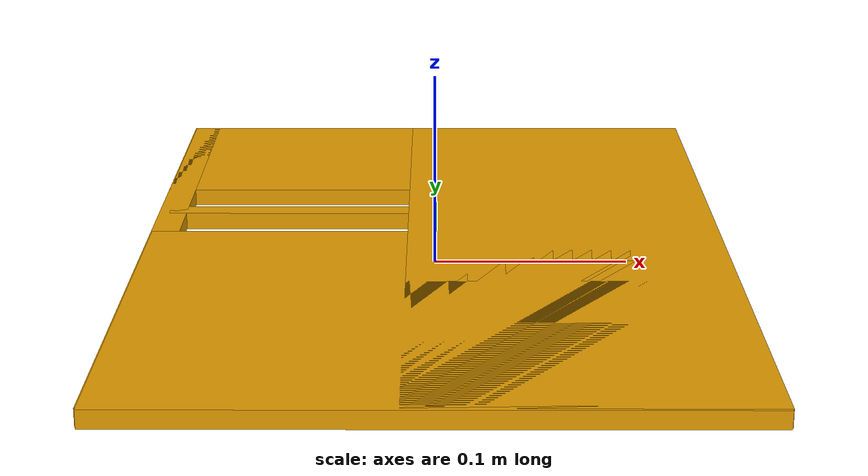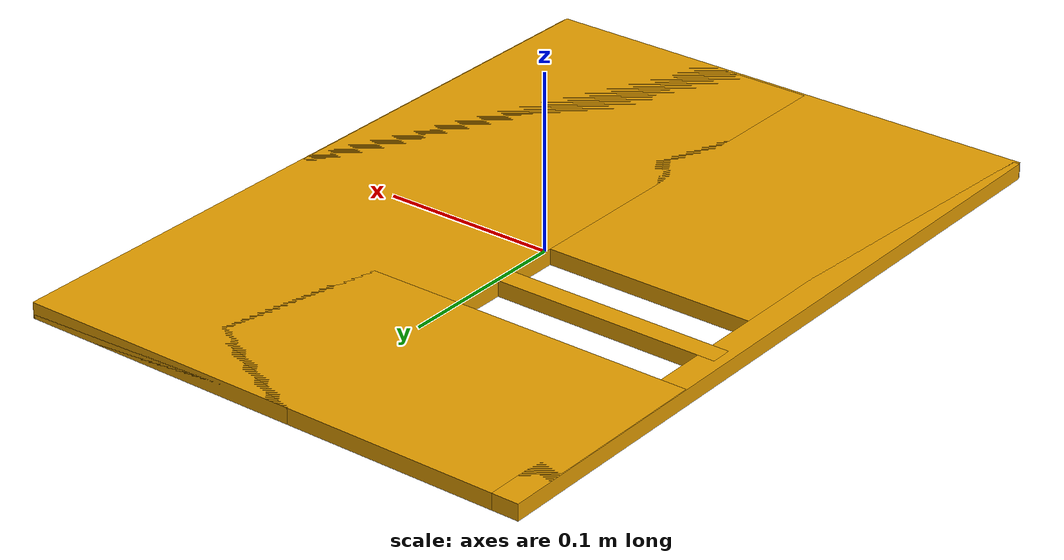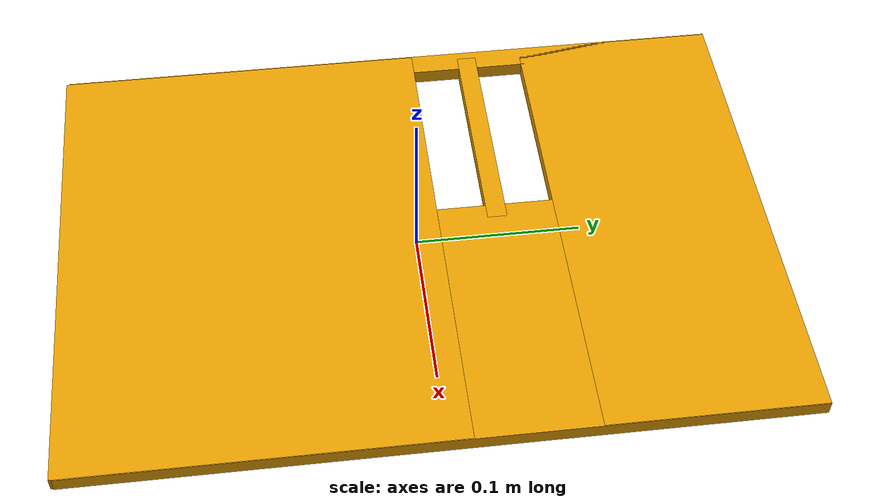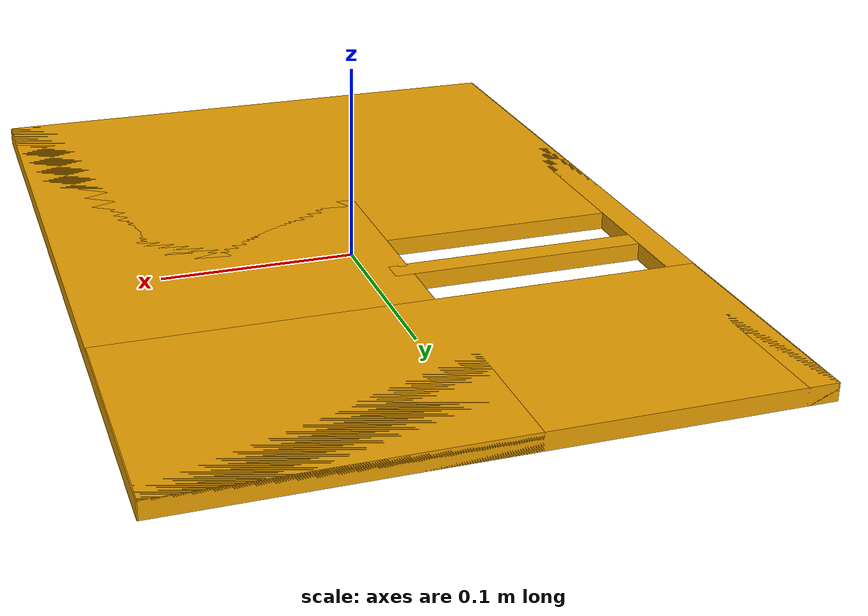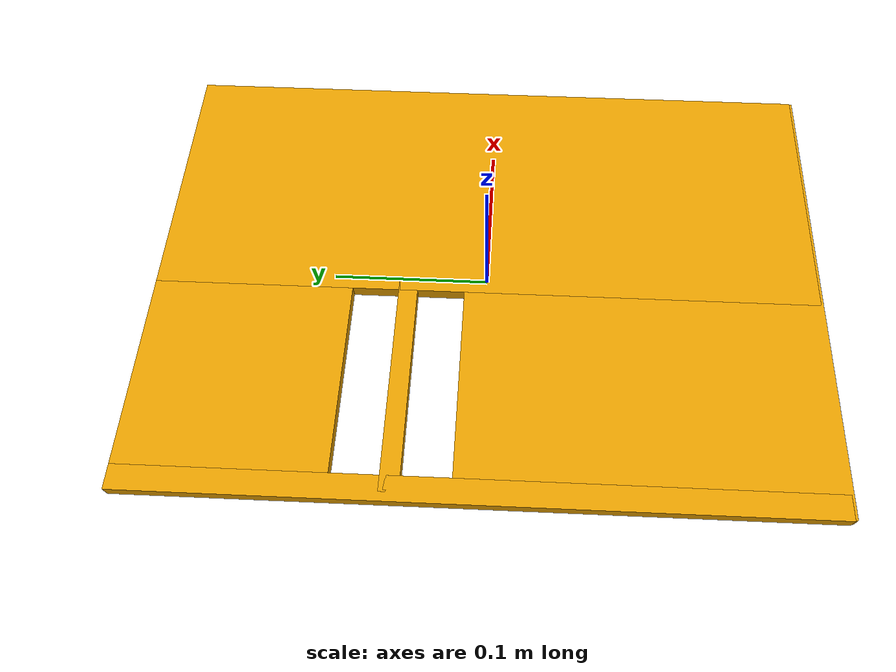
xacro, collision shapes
<?xml version="1.0"?>
<robot xmlns:xacro="http://wiki.ros.org/xacro" name="task_board">
  <!-- Include component macros -->
  <xacro:include filename="$(find aic_assets)/models/Task Board Base/task_board_base_macro.xacro"/>
  <xacro:include filename="$(find aic_assets)/models/LC Mount/lc_mount_macro.xacro"/>
  <xacro:include filename="$(find aic_assets)/models/sfp_mount_phase_2/sfp_mount_macro.xacro"/>
  <xacro:include filename="$(find aic_assets)/models/sc_mount_phase_2/sc_mount_macro.xacro"/>
  <xacro:include filename="$(find aic_assets)/models/SC Port/sc_port_macro.xacro"/>
  <xacro:include filename="$(find aic_assets)/models/NIC Card Mount/nic_card_mount_macro.xacro"/>

  <!-- Task Board Base pose arguments -->
  <xacro:arg name="x" default="-0.2"/>
  <xacro:arg name="y" default="0.2"/>
  <xacro:arg name="z" default="1.14"/>
  <xacro:arg name="roll" default="0.0"/>
  <xacro:arg name="pitch" default="0.0"/>
  <xacro:arg name="yaw" default="-3.141"/>

  <!-- LC Mount Rail 0: X=0.0275, Y=-0.10625 (left side, mount rail). LC mounts can be translated [-0.09625, 0.09625] along Y axis (rail direction) -->
  <xacro:arg name="lc_mount_rail_0_present" default="false"/>
  <xacro:arg name="lc_mount_rail_0_translation" default="0.0"/>
  <xacro:arg name="lc_mount_rail_0_roll" default="0.0"/>
  <xacro:arg name="lc_mount_rail_0_pitch" default="0.0"/>
  <xacro:arg name="lc_mount_rail_0_yaw" default="0.0"/>

  <!-- SFP Mount Rail 0: X=0.0535, Y=-0.10625 (left side, mount rail). SFP mounts can be translated [-0.09625, 0.09625] along Y axis (rail direction) -->
  <xacro:arg name="sfp_mount_rail_0_present" default="false"/>
  <xacro:arg name="sfp_mount_rail_0_translation" default="0.0"/>
  <xacro:arg name="sfp_mount_rail_0_roll" default="0.0"/>
  <xacro:arg name="sfp_mount_rail_0_pitch" default="0.0"/>
  <xacro:arg name="sfp_mount_rail_0_yaw" default="0.0"/>

  <!-- SC Mount Rail 0: X=0.0985, Y=-0.10625 (left side, mount rail). SC mounts can be translated [-0.09625, 0.09625] along Y axis (rail direction) -->
  <xacro:arg name="sc_mount_rail_0_present" default="false"/>
  <xacro:arg name="sc_mount_rail_0_translation" default="0.0"/>
  <xacro:arg name="sc_mount_rail_0_roll" default="0.0"/>
  <xacro:arg name="sc_mount_rail_0_pitch" default="0.0"/>
  <xacro:arg name="sc_mount_rail_0_yaw" default="0.0"/>

  <!-- LC Mount Rail 1: X=0.0275, Y=0.10625 (right side, mount rail). LC mounts can be translated [-0.09625, 0.09625] along Y axis (rail direction) -->
  <xacro:arg name="lc_mount_rail_1_present" default="false"/>
  <xacro:arg name="lc_mount_rail_1_translation" default="0.0"/>
  <xacro:arg name="lc_mount_rail_1_roll" default="0.0"/>
  <xacro:arg name="lc_mount_rail_1_pitch" default="0.0"/>
  <xacro:arg name="lc_mount_rail_1_yaw" default="0.0"/>

  <!-- SFP Mount Rail 1: X=0.0535, Y=0.10625 (right side, mount rail). SFP mounts can be translated [-0.09625, 0.09625] along Y axis (rail direction) -->
  <xacro:arg name="sfp_mount_rail_1_present" default="false"/>
  <xacro:arg name="sfp_mount_rail_1_translation" default="0.0"/>
  <xacro:arg name="sfp_mount_rail_1_roll" default="0.0"/>
  <xacro:arg name="sfp_mount_rail_1_pitch" default="0.0"/>
  <xacro:arg name="sfp_mount_rail_1_yaw" default="0.0"/>

  <!-- SC Mount Rail 1: X=0.0985, Y=0.10625 (right side, mount rail). SC mounts can be translated [-0.09625, 0.09625] along Y axis (rail direction) -->
  <xacro:arg name="sc_mount_rail_1_present" default="false"/>
  <xacro:arg name="sc_mount_rail_1_translation" default="0.0"/>
  <xacro:arg name="sc_mount_rail_1_roll" default="0.0"/>
  <xacro:arg name="sc_mount_rail_1_pitch" default="0.0"/>
  <xacro:arg name="sc_mount_rail_1_yaw" default="0.0"/>

  <!-- SC Port 0 -->
  <xacro:arg name="sc_port_0_present" default="false"/>
  <xacro:arg name="sc_port_0_translation" default="0.0"/>
  <xacro:arg name="sc_port_0_roll" default="0.0"/>
  <xacro:arg name="sc_port_0_pitch" default="0.0"/>
  <xacro:arg name="sc_port_0_yaw" default="0.0"/>

  <!-- SC Port 1 -->
  <xacro:arg name="sc_port_1_present" default="false"/>
  <xacro:arg name="sc_port_1_translation" default="0.0"/>
  <xacro:arg name="sc_port_1_roll" default="0.0"/>
  <xacro:arg name="sc_port_1_pitch" default="0.0"/>
  <xacro:arg name="sc_port_1_yaw" default="0.0"/>

  <!-- SC Port 2 (SC_RAIL_0) -->
  <xacro:arg name="sc_port_2_present" default="false"/>
  <xacro:arg name="sc_port_2_translation" default="0.0"/>
  <xacro:arg name="sc_port_2_roll" default="0.0"/>
  <xacro:arg name="sc_port_2_pitch" default="0.0"/>
  <xacro:arg name="sc_port_2_yaw" default="0.0"/>

  <!-- SC Port 3 (SC_RAIL_1) -->
  <xacro:arg name="sc_port_3_present" default="false"/>
  <xacro:arg name="sc_port_3_translation" default="0.0"/>
  <xacro:arg name="sc_port_3_roll" default="0.0"/>
  <xacro:arg name="sc_port_3_pitch" default="0.0"/>
  <xacro:arg name="sc_port_3_yaw" default="0.0"/>

  <!-- SC Port 4 (SC_RAIL_1) -->
  <xacro:arg name="sc_port_4_present" default="false"/>
  <xacro:arg name="sc_port_4_translation" default="0.0"/>
  <xacro:arg name="sc_port_4_roll" default="0.0"/>
  <xacro:arg name="sc_port_4_pitch" default="0.0"/>
  <xacro:arg name="sc_port_4_yaw" default="0.0"/>

  <!-- NIC Card Mount 0 -->
  <xacro:arg name="nic_card_mount_0_present" default="false"/>
  <xacro:arg name="nic_card_mount_0_translation" default="0.0"/>
  <xacro:arg name="nic_card_mount_0_roll" default="0.0"/>
  <xacro:arg name="nic_card_mount_0_pitch" default="0.0"/>
  <xacro:arg name="nic_card_mount_0_yaw" default="0.0"/>

  <!-- NIC Card Mount 1 -->
  <xacro:arg name="nic_card_mount_1_present" default="false"/>
  <xacro:arg name="nic_card_mount_1_translation" default="0.0"/>
  <xacro:arg name="nic_card_mount_1_roll" default="0.0"/>
  <xacro:arg name="nic_card_mount_1_pitch" default="0.0"/>
  <xacro:arg name="nic_card_mount_1_yaw" default="0.0"/>

  <!-- NIC Card Mount 2 -->
  <xacro:arg name="nic_card_mount_2_present" default="false"/>
  <xacro:arg name="nic_card_mount_2_translation" default="0.0"/>
  <xacro:arg name="nic_card_mount_2_roll" default="0.0"/>
  <xacro:arg name="nic_card_mount_2_pitch" default="0.0"/>
  <xacro:arg name="nic_card_mount_2_yaw" default="0.0"/>

  <!-- NIC Card Mount 3 -->
  <xacro:arg name="nic_card_mount_3_present" default="false"/>
  <xacro:arg name="nic_card_mount_3_translation" default="0.0"/>
  <xacro:arg name="nic_card_mount_3_roll" default="0.0"/>
  <xacro:arg name="nic_card_mount_3_pitch" default="0.0"/>
  <xacro:arg name="nic_card_mount_3_yaw" default="0.0"/>

  <!-- NIC Card Mount 4 -->
  <xacro:arg name="nic_card_mount_4_present" default="false"/>
  <xacro:arg name="nic_card_mount_4_translation" default="0.0"/>
  <xacro:arg name="nic_card_mount_4_roll" default="0.0"/>
  <xacro:arg name="nic_card_mount_4_pitch" default="0.0"/>
  <xacro:arg name="nic_card_mount_4_yaw" default="0.0"/>

  <!-- Calculate absolute positions relative to task board base -->
  <!-- Task Board Base is at (0.25, 0, 1.14) relative to world in original SDF -->
	<!-- NIC Card mounts are centered at the middle of the slot. Each mount can be translated [-0.048, 0.036] along X axis to adjust position within slot. -->
	<!-- SC Ports are centered at the middle of the slot. Each port can be translated [-0.055, 0.055] along X axis to adjust position within slot. -->
  <!-- Components are positioned relative to base -->

  <!-- Instantiate Task Board Base -->
  <xacro:task_board_base prefix="task_board_"/>

  <!-- LC Mount Rail 0: X=0.01, Y=-0.10625 (left side, mount rail) -->
  <xacro:if value="$(arg lc_mount_rail_0_present)">
    <xacro:lc_mount prefix="lc_mount_rail_0_"/>
    <joint name="lc_mount_rail_0_joint" type="fixed">
      <parent link="task_board_base_link"/>
      <child link="lc_mount_rail_0_link"/>
      <origin xyz="0.01 ${-0.10625 + $(arg lc_mount_rail_0_translation)} 0.012" rpy="$(arg lc_mount_rail_0_roll) $(arg lc_mount_rail_0_pitch) $(arg lc_mount_rail_0_yaw)"/>
    </joint>
  </xacro:if>

  <!-- SFP Mount Rail 0: X=0.055, Y=-0.10625 (left side, mount rail) -->
  <xacro:if value="$(arg sfp_mount_rail_0_present)">
    <xacro:sfp_mount prefix="sfp_mount_rail_0_"/>
    <joint name="sfp_mount_rail_0_joint" type="fixed">
      <parent link="task_board_base_link"/>
      <child link="sfp_mount_rail_0_link"/>
      <origin xyz="0.0775 ${-0.10625 + $(arg sfp_mount_rail_0_translation)} 0.01" rpy="$(arg sfp_mount_rail_0_roll) $(arg sfp_mount_rail_0_pitch) $(arg sfp_mount_rail_0_yaw)"/>
    </joint>
  </xacro:if>

  <!-- SC Mount Rail 0: X=0.1, Y=-0.10625 (left side, mount rail) -->
  <xacro:if value="$(arg sc_mount_rail_0_present)">
    <xacro:sc_mount prefix="sc_mount_rail_0_"/>
    <joint name="sc_mount_rail_0_joint" type="fixed">
      <parent link="task_board_base_link"/>
      <child link="sc_mount_rail_0_link"/>
      <origin xyz="0.1225 ${-0.10625 + $(arg sc_mount_rail_0_translation)} 0.012" rpy="$(arg sc_mount_rail_0_roll) $(arg sc_mount_rail_0_pitch) $(arg sc_mount_rail_0_yaw)"/>
    </joint>
  </xacro:if>

  <!-- LC Mount Rail 1: X=0.01, Y=0.10625 (right side, mount rail) -->
  <xacro:if value="$(arg lc_mount_rail_1_present)">
    <xacro:lc_mount prefix="lc_mount_rail_1_"/>
    <joint name="lc_mount_rail_1_joint" type="fixed">
      <parent link="task_board_base_link"/>
      <child link="lc_mount_rail_1_link"/>
      <origin xyz="0.01 ${0.10625 + $(arg lc_mount_rail_1_translation)} 0.012" rpy="$(arg lc_mount_rail_1_roll) $(arg lc_mount_rail_1_pitch) $(arg lc_mount_rail_1_yaw)"/>
    </joint>
  </xacro:if>

  <!-- SFP Mount Rail 1: X=0.055, Y=0.10625 (right side, mount rail) -->
  <xacro:if value="$(arg sfp_mount_rail_1_present)">
    <xacro:sfp_mount prefix="sfp_mount_rail_1_"/>
    <joint name="sfp_mount_rail_1_joint" type="fixed">
      <parent link="task_board_base_link"/>
      <child link="sfp_mount_rail_1_link"/>
      <origin xyz="0.055 ${0.10625 + $(arg sfp_mount_rail_1_translation)} 0.01" rpy="$(arg sfp_mount_rail_1_roll) $(arg sfp_mount_rail_1_pitch) $(arg sfp_mount_rail_1_yaw)"/>
    </joint>
  </xacro:if>

  <!-- SC Mount Rail 1: X=0.0985, Y=0.10625 (right side, mount rail) -->
  <xacro:if value="$(arg sc_mount_rail_1_present)">
    <xacro:sc_mount prefix="sc_mount_rail_1_"/>
    <joint name="sc_mount_rail_1_joint" type="fixed">
      <parent link="task_board_base_link"/>
      <child link="sc_mount_rail_1_link"/>
      <origin xyz="0.0985 ${0.10625 + $(arg sc_mount_rail_1_translation)} 0.01" rpy="$(arg sc_mount_rail_1_roll) $(arg sc_mount_rail_1_pitch) $(arg sc_mount_rail_1_yaw)"/>
    </joint>
  </xacro:if>

  <!-- SC Port 0 (SC_RAIL_0, Y=0.0295) -->
  <xacro:if value="$(arg sc_port_0_present)">
    <xacro:sc_port prefix="sc_port_0" pose="${-0.075 + $(arg sc_port_0_translation)} 0.0295 0.0165 ${1.57 + $(arg sc_port_0_roll)} $(arg sc_port_0_pitch) ${1.57 + $(arg sc_port_0_yaw)}"/>
    <gazebo>
      <joint name="sc_port_0_joint" type="fixed">
        <parent>task_board_base_link</parent>
        <child>sc_port_0::sc_port_link</child>
      </joint>
    </gazebo>
  </xacro:if>

  <!-- SC Port 1 (SC_RAIL_0, Y=0.0295) -->
  <xacro:if value="$(arg sc_port_1_present)">
    <xacro:sc_port prefix="sc_port_1" pose="${-0.075 + $(arg sc_port_1_translation)} 0.0295 0.0165 ${1.57 + $(arg sc_port_1_roll)} $(arg sc_port_1_pitch) ${1.57 + $(arg sc_port_1_yaw)}"/>
    <gazebo>
      <joint name="sc_port_1_joint" type="fixed">
        <parent>task_board_base_link</parent>
        <child>sc_port_1::sc_port_link</child>
      </joint>
    </gazebo>
  </xacro:if>

  <!-- SC Port 2 (SC_RAIL_0, Y=0.0295) -->
  <xacro:if value="$(arg sc_port_2_present)">
    <xacro:sc_port prefix="sc_port_2" pose="${-0.075 + $(arg sc_port_2_translation)} 0.0295 0.0165 ${1.57 + $(arg sc_port_2_roll)} $(arg sc_port_2_pitch) ${1.57 + $(arg sc_port_2_yaw)}"/>
    <gazebo>
      <joint name="sc_port_2_joint" type="fixed">
        <parent>task_board_base_link</parent>
        <child>sc_port_2::sc_port_link</child>
      </joint>
    </gazebo>
  </xacro:if>

  <!-- SC Port 3 (SC_RAIL_1, Y=0.0705) -->
  <xacro:if value="$(arg sc_port_3_present)">
    <xacro:sc_port prefix="sc_port_3" pose="${-0.075 + $(arg sc_port_3_translation)} 0.0705 0.0165 ${1.57 + $(arg sc_port_3_roll)} $(arg sc_port_3_pitch) ${1.57 + $(arg sc_port_3_yaw)}"/>
    <gazebo>
      <joint name="sc_port_3_joint" type="fixed">
        <parent>task_board_base_link</parent>
        <child>sc_port_3::sc_port_link</child>
      </joint>
    </gazebo>
  </xacro:if>

  <!-- SC Port 4 (SC_RAIL_1, Y=0.0705) -->
  <xacro:if value="$(arg sc_port_4_present)">
    <xacro:sc_port prefix="sc_port_4" pose="${-0.075 + $(arg sc_port_4_translation)} 0.0705 0.0165 ${1.57 + $(arg sc_port_4_roll)} $(arg sc_port_4_pitch) ${1.57 + $(arg sc_port_4_yaw)}"/>
    <gazebo>
      <joint name="sc_port_4_joint" type="fixed">
        <parent>task_board_base_link</parent>
        <child>sc_port_4::sc_port_link</child>
      </joint>
    </gazebo>
  </xacro:if>

  <!-- NIC Card Mount 0 (left-most) -->
  <xacro:if value="$(arg nic_card_mount_0_present)">
    <xacro:nic_card_mount prefix="nic_card_mount_0" pose="${-0.081418 + $(arg nic_card_mount_0_translation)} -0.1745 0.012 $(arg nic_card_mount_0_roll) $(arg nic_card_mount_0_pitch) $(arg nic_card_mount_0_yaw)"/>
    <gazebo>
      <joint name="nic_card_mount_0_joint" type="fixed">
        <parent>task_board_base_link</parent>
        <child>nic_card_mount_0::nic_card_mount_link</child>
      </joint>
    </gazebo>
  </xacro:if>

  <!-- NIC Card Mount 1 -->
  <xacro:if value="$(arg nic_card_mount_1_present)">
    <xacro:nic_card_mount prefix="nic_card_mount_1" pose="${-0.081418 + $(arg nic_card_mount_1_translation)} -0.1345 0.012 $(arg nic_card_mount_1_roll) $(arg nic_card_mount_1_pitch) $(arg nic_card_mount_1_yaw)"/>
    <gazebo>
      <joint name="nic_card_mount_1_joint" type="fixed">
        <parent>task_board_base_link</parent>
        <child>nic_card_mount_1::nic_card_mount_link</child>
      </joint>
    </gazebo>
  </xacro:if>

  <!-- NIC Card Mount 2 (center) -->
  <xacro:if value="$(arg nic_card_mount_2_present)">
    <xacro:nic_card_mount prefix="nic_card_mount_2" pose="${-0.081418 + $(arg nic_card_mount_2_translation)} -0.0945 0.012 $(arg nic_card_mount_2_roll) $(arg nic_card_mount_2_pitch) $(arg nic_card_mount_2_yaw)"/>
    <gazebo>
      <joint name="nic_card_mount_2_joint" type="fixed">
        <parent>task_board_base_link</parent>
        <child>nic_card_mount_2::nic_card_mount_link</child>
      </joint>
    </gazebo>
  </xacro:if>

  <!-- NIC Card Mount 3 -->
  <xacro:if value="$(arg nic_card_mount_3_present)">
    <xacro:nic_card_mount prefix="nic_card_mount_3" pose="${-0.081418 + $(arg nic_card_mount_3_translation)} -0.0545 0.012 $(arg nic_card_mount_3_roll) $(arg nic_card_mount_3_pitch) $(arg nic_card_mount_3_yaw)"/>
    <gazebo>
      <joint name="nic_card_mount_3_joint" type="fixed">
        <parent>task_board_base_link</parent>
        <child>nic_card_mount_3::nic_card_mount_link</child>
      </joint>
    </gazebo>
  </xacro:if>

  <!-- NIC Card Mount 4 (right-most) -->
  <xacro:if value="$(arg nic_card_mount_4_present)">
    <xacro:nic_card_mount prefix="nic_card_mount_4" pose="${-0.081418 + $(arg nic_card_mount_4_translation)} -0.0145 0.012 $(arg nic_card_mount_4_roll) $(arg nic_card_mount_4_pitch) $(arg nic_card_mount_4_yaw)"/>
    <gazebo>
      <joint name="nic_card_mount_4_joint" type="fixed">
        <parent>task_board_base_link</parent>
        <child>nic_card_mount_4::nic_card_mount_link</child>
      </joint>
    </gazebo>
  </xacro:if>

  <gazebo>
    <static>true</static>
    <plugin filename="libgz-sim-pose-publisher-system.so"
      name="gz::sim::systems::PosePublisher">
      <publish_link_pose>true</publish_link_pose>
      <publish_sensor_pose>false</publish_sensor_pose>
      <publish_collision_pose>false</publish_collision_pose>
      <publish_visual_pose>false</publish_visual_pose>
      <publish_nested_model_pose>true</publish_nested_model_pose>
      <publish_model_pose>true</publish_model_pose>
      <use_pose_vector_msg>true</use_pose_vector_msg>
      <static_publisher>true</static_publisher>
      <update_frequency>0</update_frequency>
      <static_update_frequency>1</static_update_frequency>
    </plugin>
  </gazebo>
</robot>

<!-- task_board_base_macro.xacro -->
<robot xmlns:xacro="http://wiki.ros.org/xacro">

  <xacro:macro name="task_board_base" params="prefix">
    <link name="${prefix}base_link">
      <inertial>
        <origin xyz="0 0 0" rpy="0 0 0"/>
        <mass value="5.0"/>
        <inertia ixx="0.1" ixy="0.0" ixz="0.0" iyy="0.1" iyz="0.0" izz="0.1"/>
      </inertial>

      <visual name="base_visual">
        <origin xyz="0 0 0" rpy="0 0 0"/>
        <geometry>
          <mesh filename="package://aic_assets/models/Task Board Base/base_visual.glb"/>
        </geometry>
      </visual>

      <collision name="v1015083001_collider_box_left">
        <origin xyz="0.0 -0.10 0.0075" rpy="0.0 0.0 0.0"/>
        <geometry>
          <box size="0.3 0.228 0.009"/>
        </geometry>
      </collision>

      <collision name="v1015083001_collider_right">
        <origin xyz="0.0 0.149 0.0075" rpy="0.0 0.0 0.0"/>
        <geometry>
          <box size="0.3 0.127 0.009"/>
        </geometry>
      </collision>

      <collision name="v1015083001_collider_mid">
        <pose>0.0 0.0 -0.0</pose>
        <origin xyz="-0.075 0.05 0.0075" rpy="0.0 0.0 0.0"/>
        <geometry>
          <box size="0.14 0.012 0.009"/>
        </geometry>
      </collision>

      <collision name="v1015083001_collider_bottom">
        <origin xyz="0.068 0.0 0.0075" rpy="0.0 0.0 0.0"/>
        <geometry>
          <box size="0.165 0.425 0.009"/>
        </geometry>
      </collision>

      <collision name="v1015083001_collider_top">
        <origin xyz="-0.143 0.0 0.0075" rpy="0.0 0.0 0.0"/>
        <geometry>
          <box size="0.015 0.425 0.009"/>
        </geometry>
      </collision>

    </link>
  </xacro:macro>

</robot>
